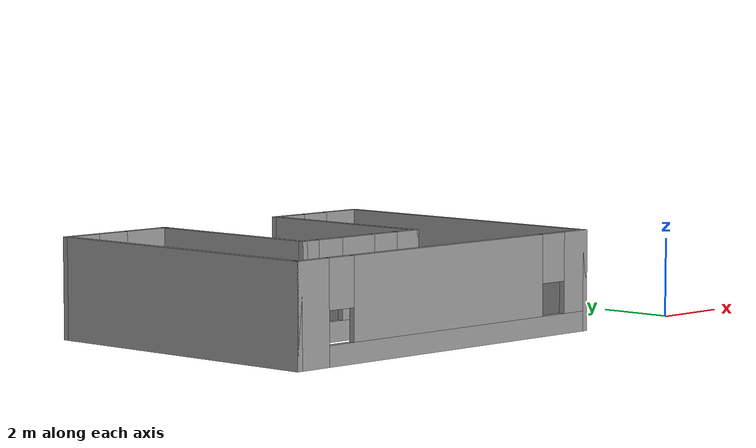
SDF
<?xml version='1.0'?>
<sdf version='1.6'>
  <model name='Untitled'>
    <pose frame=''>-8.51469 3.65022 0 0 -0 0</pose>
    <link name='Wall_16'>
      <collision name='Wall_16_Collision'>
        <geometry>
          <box>
            <size>8 0.15 2.5</size>
          </box>
        </geometry>
        <pose frame=''>0 0 1.25 0 -0 0</pose>
      </collision>
      <visual name='Wall_16_Visual'>
        <pose frame=''>0 0 1.25 0 -0 0</pose>
        <geometry>
          <box>
            <size>8 0.15 2.5</size>
          </box>
        </geometry>
        <material>
          <script>
            <uri>file://media/materials/scripts/gazebo.material</uri>
            <name>Gazebo/Grey</name>
          </script>
          <ambient>1 1 1 1</ambient>
        </material>
      </visual>
      <pose frame=''>-4.925 0 0 0 0 -1.5708</pose>
    </link>
    <link name='Wall_21'>
      <pose frame=''>0 -3.925 0 0 -0 0</pose>
      <visual name='Wall_21_Visual_0'>
        <pose frame=''>-4.49305 0 1.25 0 -0 0</pose>
        <geometry>
          <box>
            <size>1.01389 0.15 2.5</size>
          </box>
        </geometry>
        <material>
          <script>
            <uri>file://media/materials/scripts/gazebo.material</uri>
            <name>Gazebo/Grey</name>
          </script>
          <ambient>1 1 1 1</ambient>
        </material>
      </visual>
      <collision name='Wall_21_Collision_0'>
        <geometry>
          <box>
            <size>1.01389 0.15 2.5</size>
          </box>
        </geometry>
        <pose frame=''>-4.49305 0 1.25 0 -0 0</pose>
      </collision>
      <visual name='Wall_21_Visual_1'>
        <pose frame=''>0.506946 0 0.25 0 -0 0</pose>
        <geometry>
          <box>
            <size>8.98611 0.15 0.5</size>
          </box>
        </geometry>
        <material>
          <script>
            <uri>file://media/materials/scripts/gazebo.material</uri>
            <name>Gazebo/Grey</name>
          </script>
          <ambient>1 1 1 1</ambient>
        </material>
      </visual>
      <collision name='Wall_21_Collision_1'>
        <geometry>
          <box>
            <size>8.98611 0.15 0.5</size>
          </box>
        </geometry>
        <pose frame=''>0.506946 0 0.25 0 -0 0</pose>
      </collision>
      <visual name='Wall_21_Visual_2'>
        <pose frame=''>0.07991 0 1.5 0 -0 0</pose>
        <geometry>
          <box>
            <size>6.53203 0.15 2</size>
          </box>
        </geometry>
        <material>
          <script>
            <uri>file://media/materials/scripts/gazebo.material</uri>
            <name>Gazebo/Grey</name>
          </script>
          <ambient>1 1 1 1</ambient>
        </material>
      </visual>
      <collision name='Wall_21_Collision_2'>
        <geometry>
          <box>
            <size>6.53203 0.15 2</size>
          </box>
        </geometry>
        <pose frame=''>0.07991 0 1.5 0 -0 0</pose>
      </collision>
      <visual name='Wall_21_Visual_3'>
        <pose frame=''>4.57296 0 1.5 0 -0 0</pose>
        <geometry>
          <box>
            <size>0.854074 0.15 2</size>
          </box>
        </geometry>
        <material>
          <script>
            <uri>file://media/materials/scripts/gazebo.material</uri>
            <name>Gazebo/Grey</name>
          </script>
          <ambient>1 1 1 1</ambient>
        </material>
      </visual>
      <collision name='Wall_21_Collision_3'>
        <geometry>
          <box>
            <size>0.854074 0.15 2</size>
          </box>
        </geometry>
        <pose frame=''>4.57296 0 1.5 0 -0 0</pose>
      </collision>
      <visual name='Wall_21_Visual_4'>
        <pose frame=''>-3.58611 0 1.9 0 -0 0</pose>
        <geometry>
          <box>
            <size>0.8 0.15 1.2</size>
          </box>
        </geometry>
        <material>
          <script>
            <uri>file://media/materials/scripts/gazebo.material</uri>
            <name>Gazebo/Grey</name>
          </script>
          <ambient>1 1 1 1</ambient>
        </material>
      </visual>
      <collision name='Wall_21_Collision_4'>
        <geometry>
          <box>
            <size>0.8 0.15 1.2</size>
          </box>
        </geometry>
        <pose frame=''>-3.58611 0 1.9 0 -0 0</pose>
      </collision>
      <visual name='Wall_21_Visual_5'>
        <pose frame=''>3.74593 0 1.9 0 -0 0</pose>
        <geometry>
          <box>
            <size>0.8 0.15 1.2</size>
          </box>
        </geometry>
        <material>
          <script>
            <uri>file://media/materials/scripts/gazebo.material</uri>
            <name>Gazebo/Grey</name>
          </script>
          <ambient>1 1 1 1</ambient>
        </material>
      </visual>
      <collision name='Wall_21_Collision_5'>
        <geometry>
          <box>
            <size>0.8 0.15 1.2</size>
          </box>
        </geometry>
        <pose frame=''>3.74593 0 1.9 0 -0 0</pose>
      </collision>
    </link>
    <link name='Wall_22'>
      <collision name='Wall_22_Collision'>
        <geometry>
          <box>
            <size>8 0.15 2.5</size>
          </box>
        </geometry>
        <pose frame=''>0 0 1.25 0 -0 0</pose>
      </collision>
      <visual name='Wall_22_Visual'>
        <pose frame=''>0 0 1.25 0 -0 0</pose>
        <geometry>
          <box>
            <size>8 0.15 2.5</size>
          </box>
        </geometry>
        <material>
          <script>
            <uri>file://media/materials/scripts/gazebo.material</uri>
            <name>Gazebo/Grey</name>
          </script>
          <ambient>1 1 1 1</ambient>
        </material>
      </visual>
      <pose frame=''>4.925 0 0 0 -0 1.5708</pose>
    </link>
    <link name='Wall_23'>
      <pose frame=''>3.5 3.925 0 0 -0 3.14159</pose>
      <visual name='Wall_23_Visual_0'>
        <pose frame=''>-0.913571 0 1.25 0 -0 0</pose>
        <geometry>
          <box>
            <size>1.17286 0.15 2.5</size>
          </box>
        </geometry>
        <material>
          <script>
            <uri>file://media/materials/scripts/gazebo.material</uri>
            <name>Gazebo/Grey</name>
          </script>
          <ambient>1 1 1 1</ambient>
        </material>
      </visual>
      <collision name='Wall_23_Collision_0'>
        <geometry>
          <box>
            <size>1.17286 0.15 2.5</size>
          </box>
        </geometry>
        <pose frame=''>-0.913571 0 1.25 0 -0 0</pose>
      </collision>
      <visual name='Wall_23_Visual_1'>
        <pose frame=''>0.586429 0 0.25 0 -0 0</pose>
        <geometry>
          <box>
            <size>1.82714 0.15 0.5</size>
          </box>
        </geometry>
        <material>
          <script>
            <uri>file://media/materials/scripts/gazebo.material</uri>
            <name>Gazebo/Grey</name>
          </script>
          <ambient>1 1 1 1</ambient>
        </material>
      </visual>
      <collision name='Wall_23_Collision_1'>
        <geometry>
          <box>
            <size>1.82714 0.15 0.5</size>
          </box>
        </geometry>
        <pose frame=''>0.586429 0 0.25 0 -0 0</pose>
      </collision>
      <visual name='Wall_23_Visual_2'>
        <pose frame=''>0.986429 0 1.5 0 -0 0</pose>
        <geometry>
          <box>
            <size>1.02714 0.15 2</size>
          </box>
        </geometry>
        <material>
          <script>
            <uri>file://media/materials/scripts/gazebo.material</uri>
            <name>Gazebo/Grey</name>
          </script>
          <ambient>1 1 1 1</ambient>
        </material>
      </visual>
      <collision name='Wall_23_Collision_2'>
        <geometry>
          <box>
            <size>1.02714 0.15 2</size>
          </box>
        </geometry>
        <pose frame=''>0.986429 0 1.5 0 -0 0</pose>
      </collision>
      <visual name='Wall_23_Visual_3'>
        <pose frame=''>0.072857 0 1.9 0 -0 0</pose>
        <geometry>
          <box>
            <size>0.8 0.15 1.2</size>
          </box>
        </geometry>
        <material>
          <script>
            <uri>file://media/materials/scripts/gazebo.material</uri>
            <name>Gazebo/Grey</name>
          </script>
          <ambient>1 1 1 1</ambient>
        </material>
      </visual>
      <collision name='Wall_23_Collision_3'>
        <geometry>
          <box>
            <size>0.8 0.15 1.2</size>
          </box>
        </geometry>
        <pose frame=''>0.072857 0 1.9 0 -0 0</pose>
      </collision>
    </link>
    <link name='Wall_24'>
      <collision name='Wall_24_Collision'>
        <geometry>
          <box>
            <size>5 0.15 2.5</size>
          </box>
        </geometry>
        <pose frame=''>0 0 1.25 0 -0 0</pose>
      </collision>
      <visual name='Wall_24_Visual'>
        <pose frame=''>0 0 1.25 0 -0 0</pose>
        <geometry>
          <box>
            <size>5 0.15 2.5</size>
          </box>
        </geometry>
        <material>
          <script>
            <uri>file://media/materials/scripts/gazebo.material</uri>
            <name>Gazebo/Grey</name>
          </script>
          <ambient>1 1 1 1</ambient>
        </material>
      </visual>
      <pose frame=''>2.075 1.5 0 0 0 -1.5708</pose>
    </link>
    <link name='Wall_25'>
      <pose frame=''>0.15 -0.925 0 0 -0 3.14159</pose>
      <visual name='Wall_25_Visual_0'>
        <pose frame=''>-1.61922 0 1.25 0 -0 0</pose>
        <geometry>
          <box>
            <size>0.761555 0.15 2.5</size>
          </box>
        </geometry>
        <material>
          <script>
            <uri>file://media/materials/scripts/gazebo.material</uri>
            <name>Gazebo/Grey</name>
          </script>
          <ambient>1 1 1 1</ambient>
        </material>
      </visual>
      <collision name='Wall_25_Collision_0'>
        <geometry>
          <box>
            <size>0.761555 0.15 2.5</size>
          </box>
        </geometry>
        <pose frame=''>-1.61922 0 1.25 0 -0 0</pose>
      </collision>
      <visual name='Wall_25_Visual_1'>
        <pose frame=''>0.380778 0 0.25 0 -0 0</pose>
        <geometry>
          <box>
            <size>3.23845 0.15 0.5</size>
          </box>
        </geometry>
        <material>
          <script>
            <uri>file://media/materials/scripts/gazebo.material</uri>
            <name>Gazebo/Grey</name>
          </script>
          <ambient>1 1 1 1</ambient>
        </material>
      </visual>
      <collision name='Wall_25_Collision_1'>
        <geometry>
          <box>
            <size>3.23845 0.15 0.5</size>
          </box>
        </geometry>
        <pose frame=''>0.380778 0 0.25 0 -0 0</pose>
      </collision>
      <visual name='Wall_25_Visual_2'>
        <pose frame=''>0.109938 0 1.5 0 -0 0</pose>
        <geometry>
          <box>
            <size>1.09676 0.15 2</size>
          </box>
        </geometry>
        <material>
          <script>
            <uri>file://media/materials/scripts/gazebo.material</uri>
            <name>Gazebo/Grey</name>
          </script>
          <ambient>1 1 1 1</ambient>
        </material>
      </visual>
      <collision name='Wall_25_Collision_2'>
        <geometry>
          <box>
            <size>1.09676 0.15 2</size>
          </box>
        </geometry>
        <pose frame=''>0.109938 0 1.5 0 -0 0</pose>
      </collision>
      <visual name='Wall_25_Visual_3'>
        <pose frame=''>1.72916 0 1.5 0 -0 0</pose>
        <geometry>
          <box>
            <size>0.54168 0.15 2</size>
          </box>
        </geometry>
        <material>
          <script>
            <uri>file://media/materials/scripts/gazebo.material</uri>
            <name>Gazebo/Grey</name>
          </script>
          <ambient>1 1 1 1</ambient>
        </material>
      </visual>
      <collision name='Wall_25_Collision_3'>
        <geometry>
          <box>
            <size>0.54168 0.15 2</size>
          </box>
        </geometry>
        <pose frame=''>1.72916 0 1.5 0 -0 0</pose>
      </collision>
      <visual name='Wall_25_Visual_4'>
        <pose frame=''>-0.838445 0 1.9 0 -0 0</pose>
        <geometry>
          <box>
            <size>0.8 0.15 1.2</size>
          </box>
        </geometry>
        <material>
          <script>
            <uri>file://media/materials/scripts/gazebo.material</uri>
            <name>Gazebo/Grey</name>
          </script>
          <ambient>1 1 1 1</ambient>
        </material>
      </visual>
      <collision name='Wall_25_Collision_4'>
        <geometry>
          <box>
            <size>0.8 0.15 1.2</size>
          </box>
        </geometry>
        <pose frame=''>-0.838445 0 1.9 0 -0 0</pose>
      </collision>
      <visual name='Wall_25_Visual_5'>
        <pose frame=''>1.05832 0 1.9 0 -0 0</pose>
        <geometry>
          <box>
            <size>0.8 0.15 1.2</size>
          </box>
        </geometry>
        <material>
          <script>
            <uri>file://media/materials/scripts/gazebo.material</uri>
            <name>Gazebo/Grey</name>
          </script>
          <ambient>1 1 1 1</ambient>
        </material>
      </visual>
      <collision name='Wall_25_Collision_5'>
        <geometry>
          <box>
            <size>0.8 0.15 1.2</size>
          </box>
        </geometry>
        <pose frame=''>1.05832 0 1.9 0 -0 0</pose>
      </collision>
    </link>
    <link name='Wall_26'>
      <collision name='Wall_26_Collision'>
        <geometry>
          <box>
            <size>5 0.15 2.5</size>
          </box>
        </geometry>
        <pose frame=''>0 0 1.25 0 -0 0</pose>
      </collision>
      <visual name='Wall_26_Visual'>
        <pose frame=''>0 0 1.25 0 -0 0</pose>
        <geometry>
          <box>
            <size>5 0.15 2.5</size>
          </box>
        </geometry>
        <material>
          <script>
            <uri>file://media/materials/scripts/gazebo.material</uri>
            <name>Gazebo/Grey</name>
          </script>
          <ambient>1 1 1 1</ambient>
        </material>
      </visual>
      <pose frame=''>-1.775 1.5 0 0 -0 1.5708</pose>
    </link>
    <link name='Wall_27'>
      <pose frame=''>-3.35 3.925 0 0 -0 3.14159</pose>
      <visual name='Wall_27_Visual_0'>
        <pose frame=''>-0.963825 0 1.25 0 -0 0</pose>
        <geometry>
          <box>
            <size>1.37235 0.15 2.5</size>
          </box>
        </geometry>
        <material>
          <script>
            <uri>file://media/materials/scripts/gazebo.material</uri>
            <name>Gazebo/Grey</name>
          </script>
          <ambient>1 1 1 1</ambient>
        </material>
      </visual>
      <collision name='Wall_27_Collision_0'>
        <geometry>
          <box>
            <size>1.37235 0.15 2.5</size>
          </box>
        </geometry>
        <pose frame=''>-0.963825 0 1.25 0 -0 0</pose>
      </collision>
      <visual name='Wall_27_Visual_1'>
        <pose frame=''>1.13617 0 1.25 0 -0 0</pose>
        <geometry>
          <box>
            <size>1.02765 0.15 2.5</size>
          </box>
        </geometry>
        <material>
          <script>
            <uri>file://media/materials/scripts/gazebo.material</uri>
            <name>Gazebo/Grey</name>
          </script>
          <ambient>1 1 1 1</ambient>
        </material>
      </visual>
      <collision name='Wall_27_Collision_1'>
        <geometry>
          <box>
            <size>1.02765 0.15 2.5</size>
          </box>
        </geometry>
        <pose frame=''>1.13617 0 1.25 0 -0 0</pose>
      </collision>
      <visual name='Wall_27_Visual_2'>
        <pose frame=''>0.17235 0 2.25 0 -0 0</pose>
        <geometry>
          <box>
            <size>0.9 0.15 0.5</size>
          </box>
        </geometry>
        <material>
          <script>
            <uri>file://media/materials/scripts/gazebo.material</uri>
            <name>Gazebo/Grey</name>
          </script>
          <ambient>1 1 1 1</ambient>
        </material>
      </visual>
      <collision name='Wall_27_Collision_2'>
        <geometry>
          <box>
            <size>0.9 0.15 0.5</size>
          </box>
        </geometry>
        <pose frame=''>0.17235 0 2.25 0 -0 0</pose>
      </collision>
    </link>
    <static>1</static>
  </model>
</sdf>
